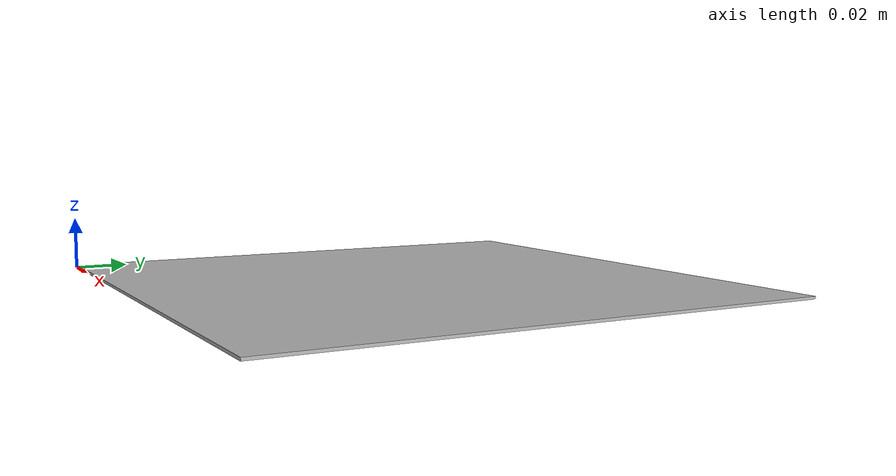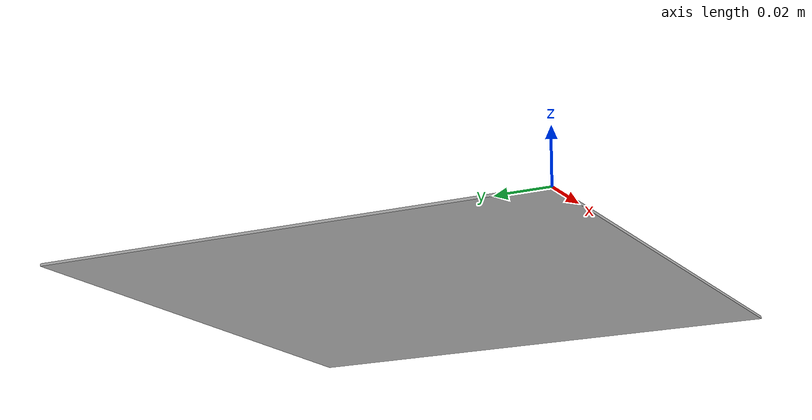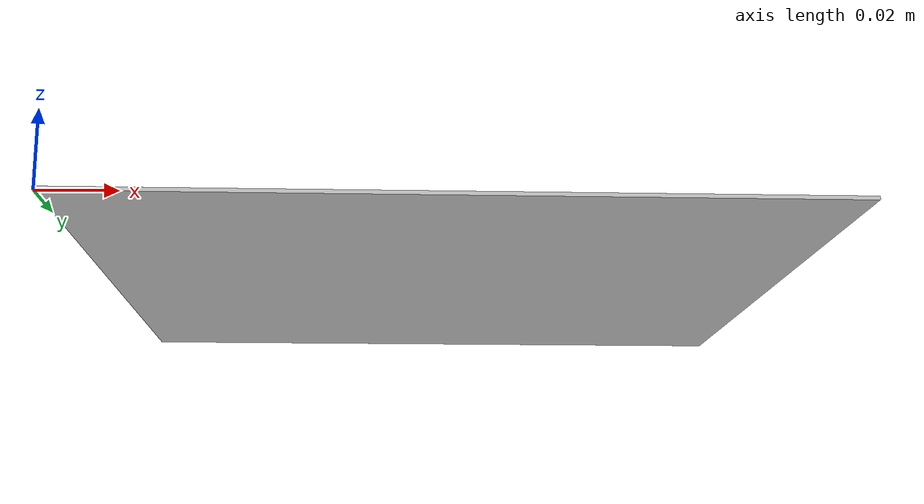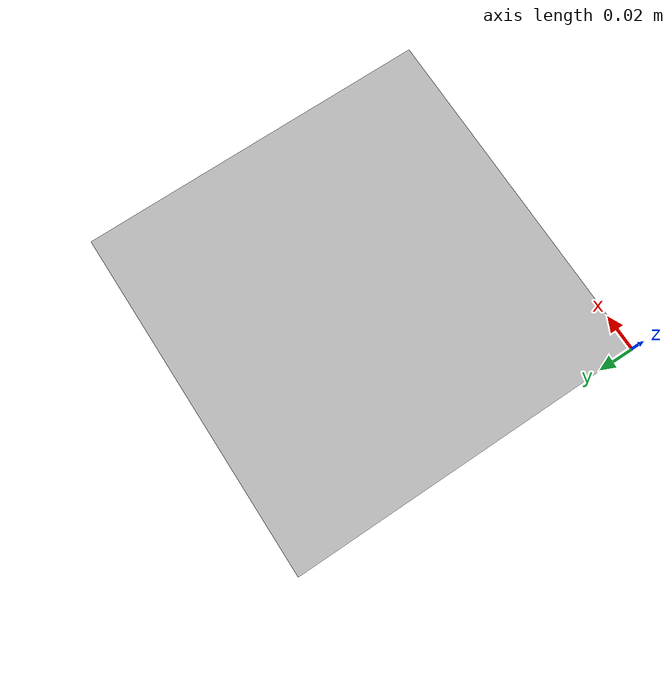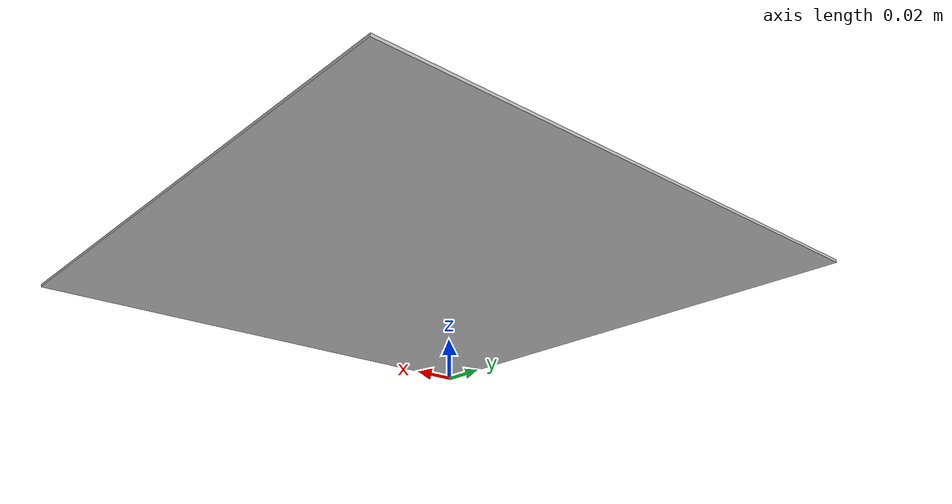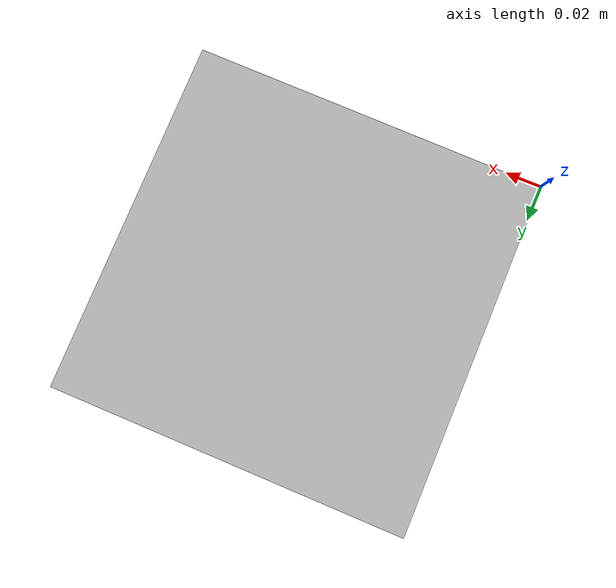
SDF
<?xml version="1.0" ?>
<sdf version="1.7">
    <model name="aruco_tag_50">
        <static>true</static>
        <pose>0 0 0 0 0 0</pose>
        <link name="link">
            <visual name="visual">
                <geometry>
                    <mesh>
                        <uri>model://aruco_tag_50/meshes/aruco_tag_50.obj</uri>
                        <scale>0.2 0.2 1</scale>
                    </mesh>
                </geometry>
            </visual>
        </link>
    </model>
</sdf>
